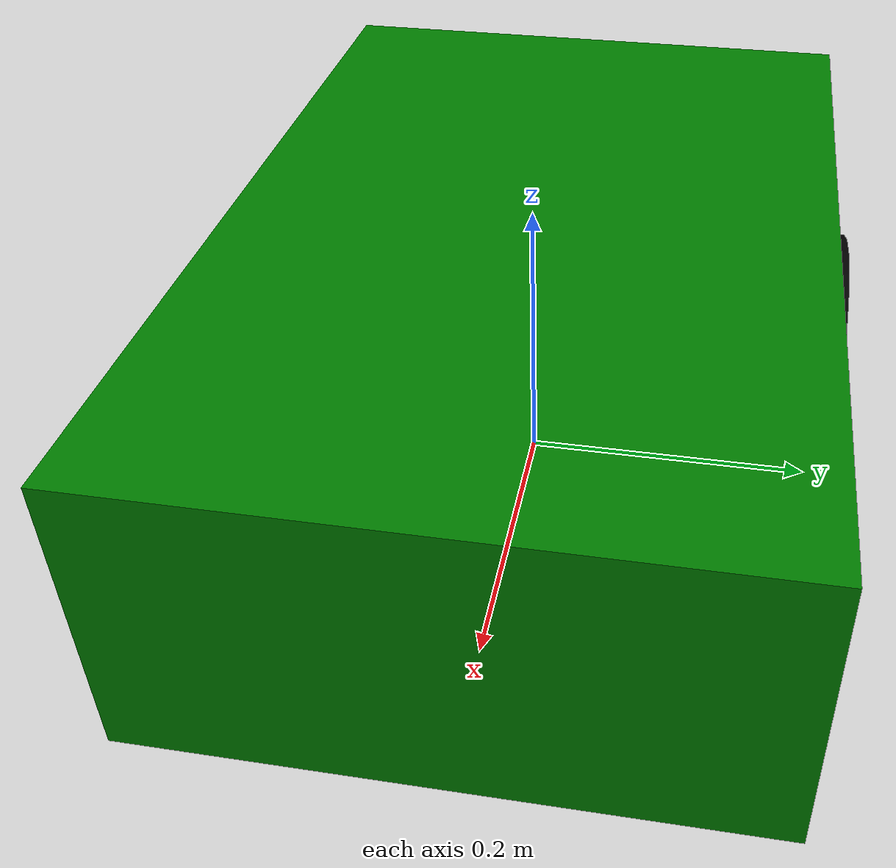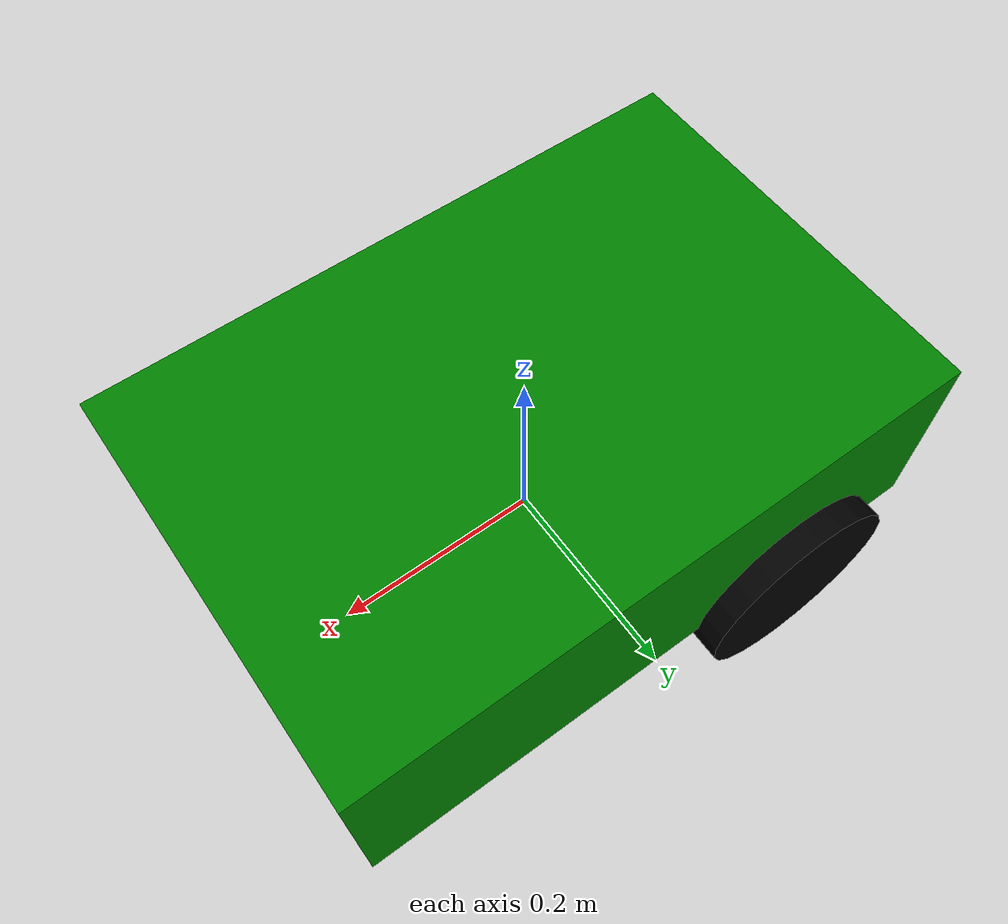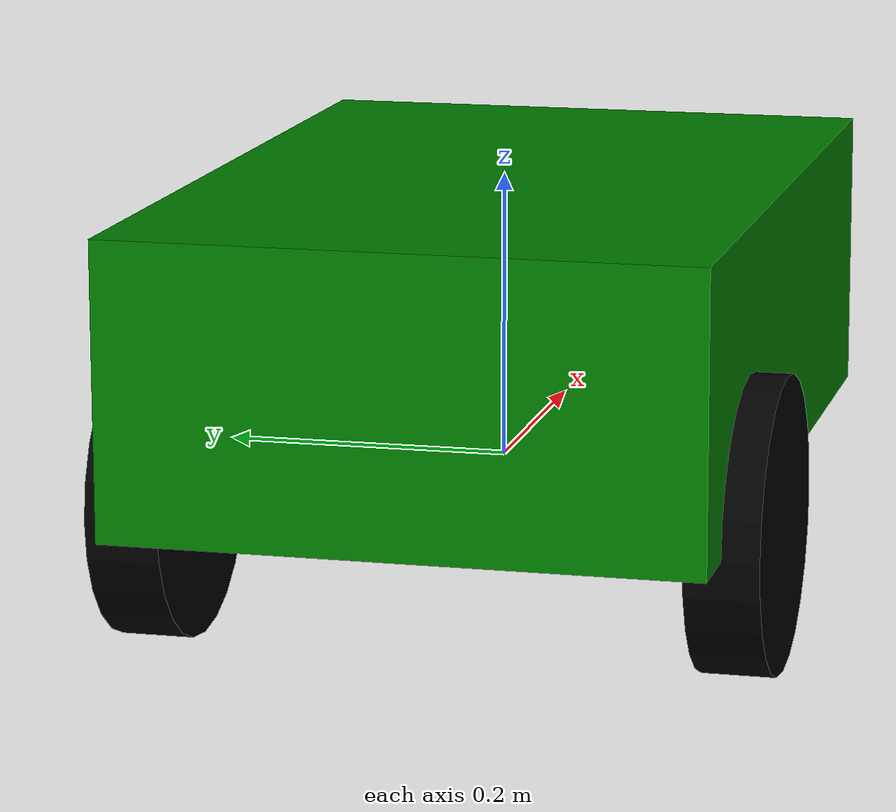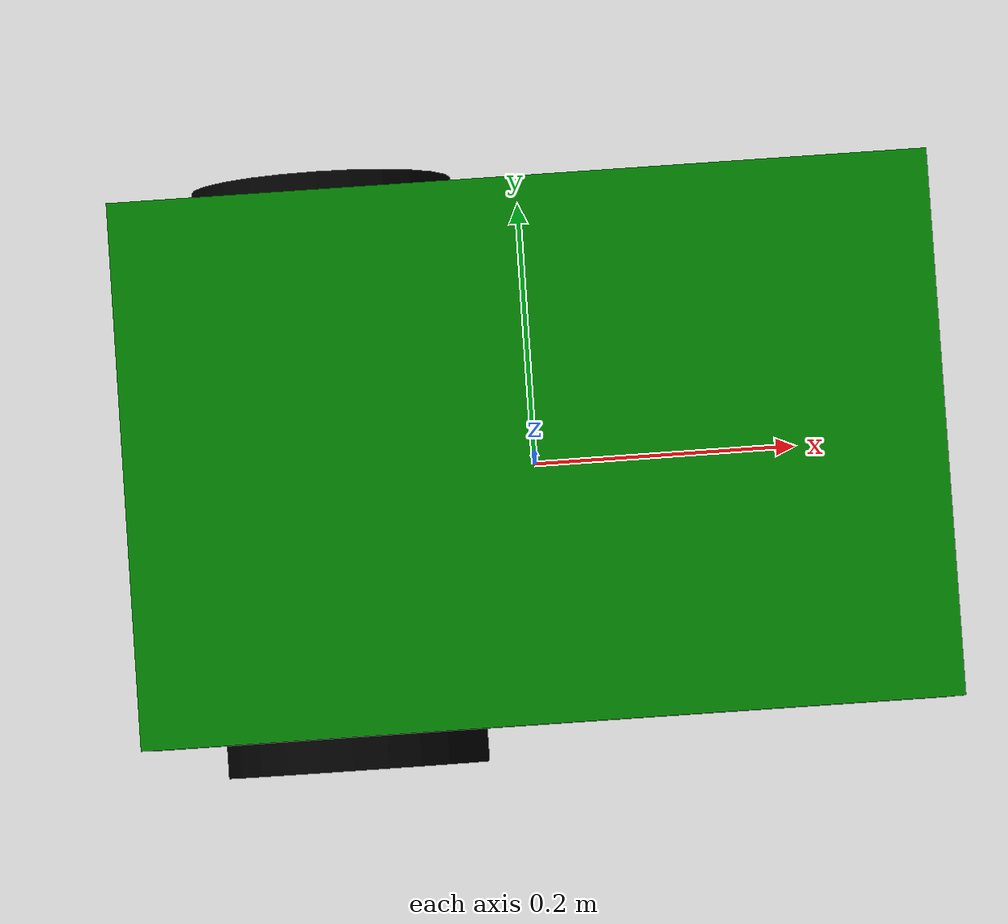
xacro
<?xml version="1.0" ?>

<robot name="MobileRobotCasterWheel" xmlns:xacro="http://www.ros.org/wiki/xacro">
  <!-- Include another xacro file -->
  <xacro:include filename="materials.xacro" />

  <!-- Dimensions of Chassis & Wheel -->
  <xacro:property name="length" value="0.6" />
  <xacro:property name="width" value="0.4" />
  <xacro:property name="height" value="0.2" />

  <xacro:property name="w_radius" value="0.1" />
  <xacro:property name="w_length" value="0.05" />
  <xacro:property name="c_radius" value="0.05" />

  <!-- MAcro function to generate wheels -->
  <xacro:macro name="generate_wheel_link" params="wheel_name">
    <link name="${wheel_name}">
      <visual>
        <geometry>
          <cylinder radius="${w_radius}" length="${w_length}" />
        </geometry>

        <!-- pi is defined in xacro -->
        <origin xyz="0 0 0" rpy="${pi/2} 0 0" />
        <material name="black" />
      </visual>
    </link>
  </xacro:macro>

  <!-- Base Link =========================================================== -->
  <link name="base_link"> </link>

  <!-- Chassis Link ======================================================== -->
  <link name="chassis">
    <visual>
      <geometry>
        <box size="${length} ${width} ${height}" />
      </geometry>

      <origin xyz="0 0 0" rpy="0 0 0" />
      <material name="green" />
    </visual>
  </link>

  <!-- Wheels Link ========================================================= -->
  <xacro:generate_wheel_link wheel_name="right_wheel" />
  <xacro:generate_wheel_link wheel_name="left_wheel" />

<!-- Castor Wheel Link ===================================================== -->
  <link name="castor_wheel">
    <visual>
      <geometry>
        <sphere radius="${c_radius}" />
      </geometry>

      <origin xyz="0 0 0" rpy="0 0 0" />
      <material name="gray" />
    </visual>
  </link>

  <!-- Base to Chassis Joint =============================================== -->
  <joint name="base_chassis_joint" type="fixed">
    <parent link="base_link" />
    <child link="chassis" />

    <origin xyz="0 0 ${height/2}" rpy="0 0 0" />
  </joint>

  <!-- Wheels Joint ======================================================== -->
  <joint name="chassis_rwheel_joint" type="continuous">
    <parent link="chassis" />
    <child link="right_wheel" />

    <origin xyz="-${length/4} -${width/2} -${height/2}" rpy="0 0 0" />
    <axis xyz="0 1 0" />
  </joint>

  <joint name="chassis_lwheel_joint" type="continuous">
    <parent link="chassis" />
    <child link="left_wheel" />

    <origin xyz="-${length/4} ${width/2} -${height/2}" rpy="0 0 0" />
    <axis xyz="0 1 0" />
  </joint>

  <!-- Castor wheel Joint ================================================== -->
  <joint name="chassis_cwheel_joint" type="fixed">
    <parent link="chassis" />
    <child link="castor_wheel" />

    <origin xyz="${length/4} 0 -${height/2 + c_radius}" rpy="0 0 0" />
  </joint>

</robot>

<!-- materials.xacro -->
<robot xmlns:xacro="http://www.ros.org/wiki/xacro">
  <!-- Defining material for wheel and body -->
  <material name="green"> <color rgba="0 0.5 0 1" /> </material>
  <material name="gray"> <color rgba="0.5 0.5 0.5 1" /> </material>
  <material name="black"> <color rgba="0 0 0 1" /> </material>
</robot>
